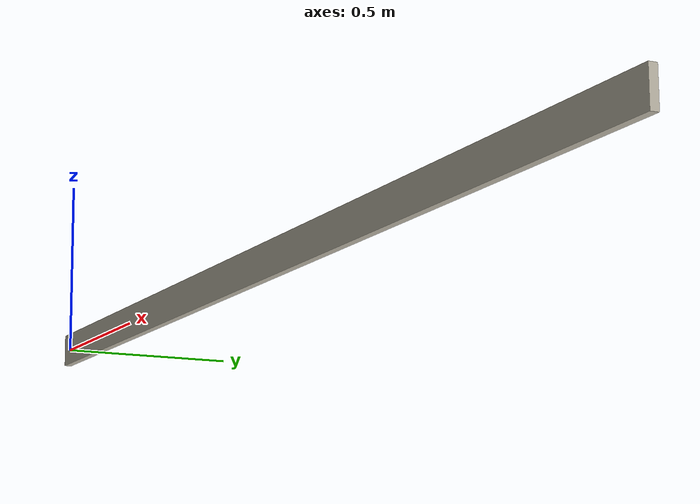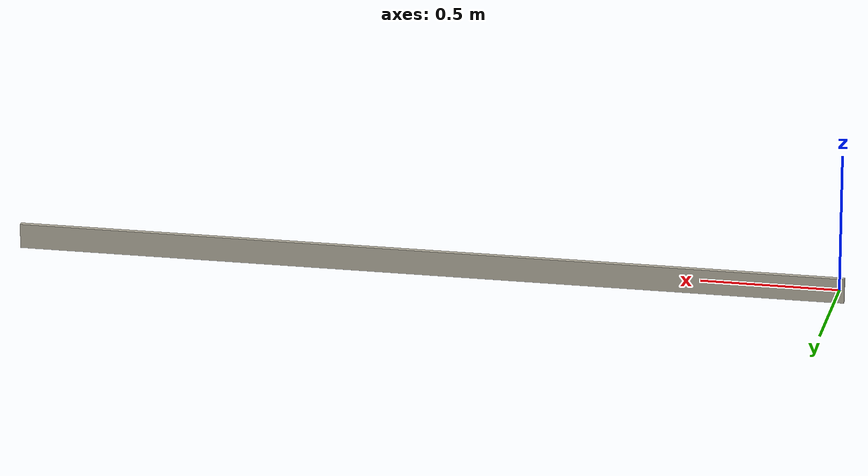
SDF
<?xml version="1.0" ?>
<sdf version="1.5">
    <model name="wall">
        <static>true</static>
        <pose>1.502 0 0 0 0 0</pose>
        <link name="body">
            <collision name="collision1">
                <geometry>
                <box>
                    <size>3.04 0.02 0.09</size>
                </box>
                </geometry>
            </collision>
            <visual name="visual1">
                <geometry>
                <box>
                    <size>3.04 0.02 0.09</size>
                </box>
                </geometry>
                <material>
                <ambient>0.71 0.69 0.63 1.0</ambient>
                <diffuse>0.71 0.69 0.63 1.0</diffuse>
                <specular>0.1 0.1 0.1 1</specular>
                <emissive>0 0 0 0</emissive>
                </material>
            </visual>
        </link>
    </model>
</sdf>
